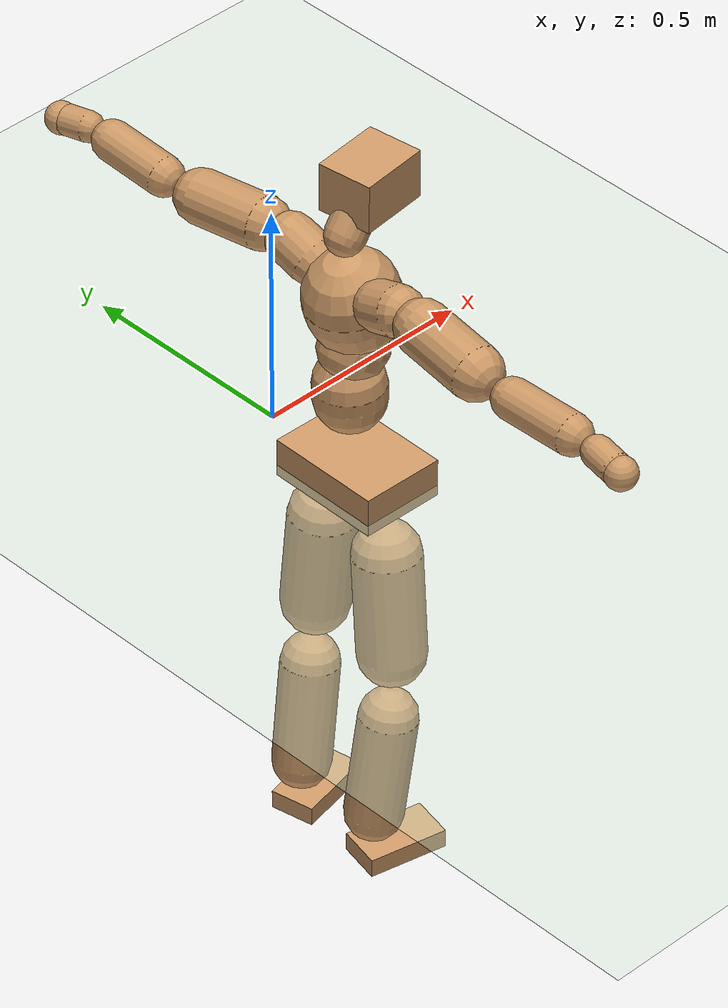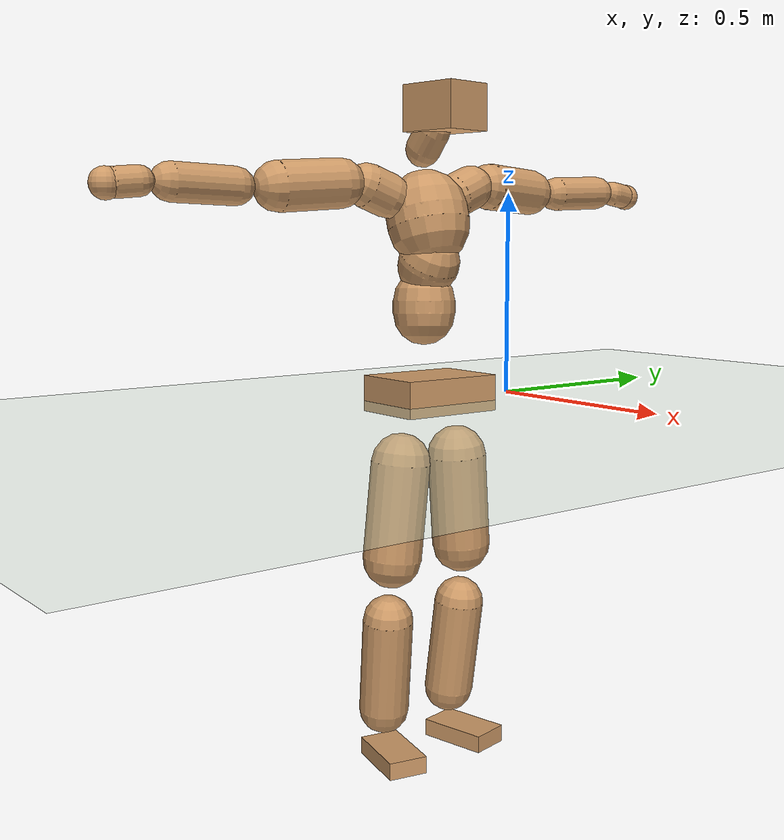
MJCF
<mujoco model="humanoid">
  <compiler coordinate="local" angle="radian"/>
  <default>
    <joint damping="0.0" armature="0.01" stiffness="0.0" limited="true"/>
    <geom conaffinity="1" condim="3" contype="7" margin="0.001" rgba="0.8 0.6 .4 1"/>
  </default>
  <asset>
    <texture type="skybox" builtin="gradient" rgb1=".4 .5 .6" rgb2="0 0 0" width="100" height="100"/>
    <texture builtin="flat" height="1278" mark="cross" markrgb="1 1 1" name="texgeom" random="0.01" rgb1="0.8 0.6 0.4" rgb2="0.8 0.6 0.4" type="cube" width="127"/>
    <texture builtin="checker" height="100" name="texplane" rgb1="0 0 0" rgb2="0.8 0.8 0.8" type="2d" width="100"/>
    <material name="MatPlane" reflectance="0.5" shininess="1" specular="1" texrepeat="60 60" texture="texplane"/>
    <material name="geom" texture="texgeom" texuniform="true"/>
  </asset>
  <worldbody>
    <light cutoff="100" diffuse="1 1 1" dir="-0 0 -1.3" directional="true" exponent="1" pos="0 0 1.3" specular=".1 .1 .1"/>
    <geom conaffinity="1" condim="3" name="floor" pos="0 0 0" rgba="0.8 0.9 0.8 1" size="100 100 .2" type="plane" material="MatPlane"/>
    <body name="Pelvis" pos="0.0012 -0.2463 0.0305">
      <freejoint name="Pelvis"/>
      <geom type="box" contype="1" conaffinity="1" density="500" pos="-0.0075 0.0001 -0.0138" size="0.0934 0.1306 0.0438" quat="1.0000 0.0000 0.0000 -0.0074" name="Pelvis"/>
      <body name="L_Hip" pos="-0.011 0.0839 -0.1006">
        <joint name="L_Hip_x" type="hinge" pos="0 0 0" axis="1 0 0" stiffness="800" damping="80" armature="0.02" range="-180.0000 180.0000"/>
        <joint name="L_Hip_y" type="hinge" pos="0 0 0" axis="0 1 0" stiffness="800" damping="80" armature="0.02" range="-180.0000 180.0000"/>
        <joint name="L_Hip_z" type="hinge" pos="0 0 0" axis="0 0 1" stiffness="800" damping="80" armature="0.02" range="-180.0000 180.0000"/>
        <geom type="capsule" contype="1" conaffinity="1" density="500" fromto="-0.0012 0.0063 -0.0773 -0.0050 0.0251 -0.3094" size="0.0734" name="L_Hip"/>
        <body name="L_Knee" pos="-0.0062 0.0314 -0.3867">
          <joint name="L_Knee_x" type="hinge" pos="0 0 0" axis="1 0 0" stiffness="800" damping="80" armature="0.02" range="-180.0000 180.0000"/>
          <joint name="L_Knee_y" type="hinge" pos="0 0 0" axis="0 1 0" stiffness="800" damping="80" armature="0.02" range="-180.0000 180.0000"/>
          <joint name="L_Knee_z" type="hinge" pos="0 0 0" axis="0 0 1" stiffness="800" damping="80" armature="0.02" range="-180.0000 180.0000"/>
          <geom type="capsule" contype="1" conaffinity="1" density="500" fromto="-0.0106 -0.0024 -0.0804 -0.0422 -0.0097 -0.3214" size="0.0624" name="L_Knee"/>
          <body name="L_Ankle" pos="-0.0528 -0.0122 -0.4018">
            <joint name="L_Ankle_x" type="hinge" pos="0 0 0" axis="1 0 0" stiffness="800" damping="80" armature="0.02" range="-180.0000 180.0000"/>
            <joint name="L_Ankle_y" type="hinge" pos="0 0 0" axis="0 1 0" stiffness="800" damping="80" armature="0.02" range="-180.0000 180.0000"/>
            <joint name="L_Ankle_z" type="hinge" pos="0 0 0" axis="0 0 1" stiffness="800" damping="80" armature="0.02" range="-180.0000 180.0000"/>
            <geom type="box" contype="1" conaffinity="1" density="500" pos="0.0612 0.0125 -0.0282" size="0.0882 0.0495 0.0215" quat="0.9949 0.0000 0.0000 0.1004" name="L_Ankle"/>
            <body name="L_Toe" pos="0.1224 0.0249 -0.0565">
              <joint name="L_Toe_x" type="hinge" pos="0 0 0" axis="1 0 0" stiffness="500" damping="50" armature="0.02" range="-180.0000 180.0000"/>
              <joint name="L_Toe_y" type="hinge" pos="0 0 0" axis="0 1 0" stiffness="500" damping="50" armature="0.02" range="-180.0000 180.0000"/>
              <joint name="L_Toe_z" type="hinge" pos="0 0 0" axis="0 0 1" stiffness="500" damping="50" armature="0.02" range="-180.0000 180.0000"/>
              <geom type="box" contype="1" conaffinity="1" density="500" pos="0.0000 0.0000 0.0304" size="0.0009 0.0025 0.0012" quat="0.9943 0.0000 0.0000 0.1065" name="L_Toe"/>
            </body>
          </body>
        </body>
      </body>
      <body name="R_Hip" pos="-0.0083 -0.0799 -0.0991">
        <joint name="R_Hip_x" type="hinge" pos="0 0 0" axis="1 0 0" stiffness="800" damping="80" armature="0.02" range="-180.0000 180.0000"/>
        <joint name="R_Hip_y" type="hinge" pos="0 0 0" axis="0 1 0" stiffness="800" damping="80" armature="0.02" range="-180.0000 180.0000"/>
        <joint name="R_Hip_z" type="hinge" pos="0 0 0" axis="0 0 1" stiffness="800" damping="80" armature="0.02" range="-180.0000 180.0000"/>
        <geom type="capsule" contype="1" conaffinity="1" density="500" fromto="-0.0021 -0.0075 -0.0790 -0.0083 -0.0300 -0.3161" size="0.0725" name="R_Hip"/>
        <body name="R_Knee" pos="-0.0103 -0.0374 -0.3951">
          <joint name="R_Knee_x" type="hinge" pos="0 0 0" axis="1 0 0" stiffness="800" damping="80" armature="0.02" range="-180.0000 180.0000"/>
          <joint name="R_Knee_y" type="hinge" pos="0 0 0" axis="0 1 0" stiffness="800" damping="80" armature="0.02" range="-180.0000 180.0000"/>
          <joint name="R_Knee_z" type="hinge" pos="0 0 0" axis="0 0 1" stiffness="800" damping="80" armature="0.02" range="-180.0000 180.0000"/>
          <geom type="capsule" contype="1" conaffinity="1" density="500" fromto="-0.0103 0.0029 -0.0803 -0.0413 0.0117 -0.3213" size="0.0624" name="R_Knee"/>
          <body name="R_Ankle" pos="-0.0516 0.0146 -0.4016">
            <joint name="R_Ankle_x" type="hinge" pos="0 0 0" axis="1 0 0" stiffness="800" damping="80" armature="0.02" range="-180.0000 180.0000"/>
            <joint name="R_Ankle_y" type="hinge" pos="0 0 0" axis="0 1 0" stiffness="800" damping="80" armature="0.02" range="-180.0000 180.0000"/>
            <joint name="R_Ankle_z" type="hinge" pos="0 0 0" axis="0 0 1" stiffness="800" damping="80" armature="0.02" range="-180.0000 180.0000"/>
            <geom type="box" contype="1" conaffinity="1" density="500" pos="0.0631 -0.0135 -0.0248" size="0.0883 0.0491 0.0215" quat="0.9944 0.0000 0.0000 -0.1055" name="R_Ankle"/>
            <body name="R_Toe" pos="0.1262 -0.0271 -0.0497">
              <joint name="R_Toe_x" type="hinge" pos="0 0 0" axis="1 0 0" stiffness="500" damping="50" armature="0.02" range="-180.0000 180.0000"/>
              <joint name="R_Toe_y" type="hinge" pos="0 0 0" axis="0 1 0" stiffness="500" damping="50" armature="0.02" range="-180.0000 180.0000"/>
              <joint name="R_Toe_z" type="hinge" pos="0 0 0" axis="0 0 1" stiffness="500" damping="50" armature="0.02" range="-180.0000 180.0000"/>
              <geom type="box" contype="1" conaffinity="1" density="500" pos="0.0000 0.0000 0.0273" size="0.0009 0.0024 0.0012" quat="0.9953 0.0000 0.0000 -0.0965" name="R_Toe"/>
            </body>
          </body>
        </body>
      </body>
      <body name="Torso" pos="-0.0258 -0.0033 0.1167">
        <joint name="Torso_x" type="hinge" pos="0 0 0" axis="1 0 0" stiffness="1000" damping="100" armature="0.02" range="-180.0000 180.0000"/>
        <joint name="Torso_y" type="hinge" pos="0 0 0" axis="0 1 0" stiffness="1000" damping="100" armature="0.02" range="-180.0000 180.0000"/>
        <joint name="Torso_z" type="hinge" pos="0 0 0" axis="0 0 1" stiffness="1000" damping="100" armature="0.02" range="-180.0000 180.0000"/>
        <geom type="capsule" contype="1" conaffinity="1" density="500" fromto="-0.0035 0.0025 0.0923 -0.0024 0.0017 0.0615" size="0.076" name="Torso"/>
        <body name="Spine" pos="-0.0059 0.0042 0.1539">
          <joint name="Spine_x" type="hinge" pos="0 0 0" axis="1 0 0" stiffness="1000" damping="100" armature="0.02" range="-180.0000 180.0000"/>
          <joint name="Spine_y" type="hinge" pos="0 0 0" axis="0 1 0" stiffness="1000" damping="100" armature="0.02" range="-180.0000 180.0000"/>
          <joint name="Spine_z" type="hinge" pos="0 0 0" axis="0 0 1" stiffness="1000" damping="100" armature="0.02" range="-180.0000 180.0000"/>
          <geom type="capsule" contype="1" conaffinity="1" density="500" fromto="0.0213 0.0005 0.0331 0.0142 0.0003 0.0221" size="0.0737" name="Spine"/>
          <body name="Chest" pos="0.0354 0.0008 0.0552">
            <joint name="Chest_x" type="hinge" pos="0 0 0" axis="1 0 0" stiffness="1000" damping="100" armature="0.02" range="-180.0000 180.0000"/>
            <joint name="Chest_y" type="hinge" pos="0 0 0" axis="0 1 0" stiffness="1000" damping="100" armature="0.02" range="-180.0000 180.0000"/>
            <joint name="Chest_z" type="hinge" pos="0 0 0" axis="0 0 1" stiffness="1000" damping="100" armature="0.02" range="-180.0000 180.0000"/>
            <geom type="capsule" contype="1" conaffinity="1" density="500" fromto="-0.0267 -0.0001 0.0957 -0.0178 -0.0000 0.0638" size="0.0992" name="Chest"/>
            <body name="Neck" pos="-0.0522 0.0004 0.2285">
              <joint name="Neck_x" type="hinge" pos="0 0 0" axis="1 0 0" stiffness="500" damping="50" armature="0.02" range="-180.0000 180.0000"/>
              <joint name="Neck_y" type="hinge" pos="0 0 0" axis="0 1 0" stiffness="500" damping="50" armature="0.02" range="-180.0000 180.0000"/>
              <joint name="Neck_z" type="hinge" pos="0 0 0" axis="0 0 1" stiffness="500" damping="50" armature="0.02" range="-180.0000 180.0000"/>
              <geom type="capsule" contype="1" conaffinity="1" density="500" fromto="0.0108 0.0010 0.0137 0.0433 0.0040 0.0547" size="0.0426" name="Neck"/>
              <body name="Head" pos="0.0541 0.005 0.0683">
                <joint name="Head_x" type="hinge" pos="0 0 0" axis="1 0 0" stiffness="500" damping="50" armature="0.02" range="-180.0000 180.0000"/>
                <joint name="Head_y" type="hinge" pos="0 0 0" axis="0 1 0" stiffness="500" damping="50" armature="0.02" range="-180.0000 180.0000"/>
                <joint name="Head_z" type="hinge" pos="0 0 0" axis="0 0 1" stiffness="500" damping="50" armature="0.02" range="-180.0000 180.0000"/>
                <geom type="box" contype="1" conaffinity="1" density="500" pos="0.0280 0.0035 0.0352" size="0.0776 0.0612 0.0539" quat="0.9981 0.0000 0.0000 0.0618" name="Head"/>
              </body>
            </body>
            <body name="L_Thorax" pos="-0.0363 0.079 0.1267">
              <joint name="L_Thorax_x" type="hinge" pos="0 0 0" axis="1 0 0" stiffness="500" damping="50" armature="0.02" range="-180.0000 180.0000"/>
              <joint name="L_Thorax_y" type="hinge" pos="0 0 0" axis="0 1 0" stiffness="500" damping="50" armature="0.02" range="-180.0000 180.0000"/>
              <joint name="L_Thorax_z" type="hinge" pos="0 0 0" axis="0 0 1" stiffness="500" damping="50" armature="0.02" range="-180.0000 180.0000"/>
              <geom type="capsule" contype="1" conaffinity="1" density="500" fromto="-0.0014 0.0177 0.0072 -0.0056 0.0708 0.0288" size="0.0539" name="L_Thorax"/>
              <body name="L_Shoulder" pos="-0.007 0.0885 0.036">
                <joint name="L_Shoulder_x" type="hinge" pos="0 0 0" axis="1 0 0" stiffness="500" damping="50" armature="0.02" range="-720.0000 720.0000"/>
                <joint name="L_Shoulder_y" type="hinge" pos="0 0 0" axis="0 1 0" stiffness="500" damping="50" armature="0.02" range="-720.0000 720.0000"/>
                <joint name="L_Shoulder_z" type="hinge" pos="0 0 0" axis="0 0 1" stiffness="500" damping="50" armature="0.02" range="-720.0000 720.0000"/>
                <geom type="capsule" contype="1" conaffinity="1" density="500" fromto="-0.0063 0.0516 -0.0032 -0.0253 0.2064 -0.0129" size="0.0569" name="L_Shoulder"/>
                <body name="L_Elbow" pos="-0.0317 0.258 -0.0162">
                  <joint name="L_Elbow_x" type="hinge" pos="0 0 0" axis="1 0 0" stiffness="500" damping="50" armature="0.02" range="-720.0000 720.0000"/>
                  <joint name="L_Elbow_y" type="hinge" pos="0 0 0" axis="0 1 0" stiffness="500" damping="50" armature="0.02" range="-720.0000 720.0000"/>
                  <joint name="L_Elbow_z" type="hinge" pos="0 0 0" axis="0 0 1" stiffness="500" damping="50" armature="0.02" range="-720.0000 720.0000"/>
                  <geom type="capsule" contype="1" conaffinity="1" density="500" fromto="0.0006 0.0500 0.0019 0.0024 0.2000 0.0077" size="0.0431" name="L_Elbow"/>
                  <body name="L_Wrist" pos="0.0031 0.25 0.0096">
                    <joint name="L_Wrist_x" type="hinge" pos="0 0 0" axis="1 0 0" stiffness="300" damping="30" armature="0.02" range="-180.0000 180.0000"/>
                    <joint name="L_Wrist_y" type="hinge" pos="0 0 0" axis="0 1 0" stiffness="300" damping="30" armature="0.02" range="-180.0000 180.0000"/>
                    <joint name="L_Wrist_z" type="hinge" pos="0 0 0" axis="0 0 1" stiffness="300" damping="30" armature="0.02" range="-180.0000 180.0000"/>
                    <geom type="capsule" contype="1" conaffinity="1" density="500" fromto="-0.0028 0.0170 -0.0021 -0.0111 0.0678 -0.0083" size="0.0324" name="L_Wrist"/>
                    <body name="L_Hand" pos="-0.0139 0.0848 -0.0104">
                      <joint name="L_Hand_x" type="hinge" pos="0 0 0" axis="1 0 0" stiffness="300" damping="30" armature="0.02" range="-180.0000 180.0000"/>
                      <joint name="L_Hand_y" type="hinge" pos="0 0 0" axis="0 1 0" stiffness="300" damping="30" armature="0.02" range="-180.0000 180.0000"/>
                      <joint name="L_Hand_z" type="hinge" pos="0 0 0" axis="0 0 1" stiffness="300" damping="30" armature="0.02" range="-180.0000 180.0000"/>
                      <geom type="sphere" contype="1" conaffinity="1" density="500" size="0.0343" pos="0.0000 0.0000 0.0000" name="L_Hand"/>
                    </body>
                  </body>
                </body>
              </body>
            </body>
            <body name="R_Thorax" pos="-0.0448 -0.0797 0.1234">
              <joint name="R_Thorax_x" type="hinge" pos="0 0 0" axis="1 0 0" stiffness="500" damping="50" armature="0.02" range="-180.0000 180.0000"/>
              <joint name="R_Thorax_y" type="hinge" pos="0 0 0" axis="0 1 0" stiffness="500" damping="50" armature="0.02" range="-180.0000 180.0000"/>
              <joint name="R_Thorax_z" type="hinge" pos="0 0 0" axis="0 0 1" stiffness="500" damping="50" armature="0.02" range="-180.0000 180.0000"/>
              <geom type="capsule" contype="1" conaffinity="1" density="500" fromto="-0.0018 -0.0191 0.0074 -0.0073 -0.0764 0.0296" size="0.0528" name="R_Thorax"/>
              <body name="R_Shoulder" pos="-0.0092 -0.0956 0.0371">
                <joint name="R_Shoulder_x" type="hinge" pos="0 0 0" axis="1 0 0" stiffness="500" damping="50" armature="0.02" range="-720.0000 720.0000"/>
                <joint name="R_Shoulder_y" type="hinge" pos="0 0 0" axis="0 1 0" stiffness="500" damping="50" armature="0.02" range="-720.0000 720.0000"/>
                <joint name="R_Shoulder_z" type="hinge" pos="0 0 0" axis="0 0 1" stiffness="500" damping="50" armature="0.02" range="-720.0000 720.0000"/>
                <geom type="capsule" contype="1" conaffinity="1" density="500" fromto="-0.0051 -0.0520 -0.0034 -0.0203 -0.2081 -0.0138" size="0.0579" name="R_Shoulder"/>
                <body name="R_Elbow" pos="-0.0254 -0.2602 -0.0172">
                  <joint name="R_Elbow_x" type="hinge" pos="0 0 0" axis="1 0 0" stiffness="500" damping="50" armature="0.02" range="-720.0000 720.0000"/>
                  <joint name="R_Elbow_y" type="hinge" pos="0 0 0" axis="0 1 0" stiffness="500" damping="50" armature="0.02" range="-720.0000 720.0000"/>
                  <joint name="R_Elbow_z" type="hinge" pos="0 0 0" axis="0 0 1" stiffness="500" damping="50" armature="0.02" range="-720.0000 720.0000"/>
                  <geom type="capsule" contype="1" conaffinity="1" density="500" fromto="-0.0003 -0.0518 0.0016 -0.0011 -0.2070 0.0066" size="0.0429" name="R_Elbow"/>
                  <body name="R_Wrist" pos="-0.0014 -0.2588 0.0082">
                    <joint name="R_Wrist_x" type="hinge" pos="0 0 0" axis="1 0 0" stiffness="300" damping="30" armature="0.02" range="-180.0000 180.0000"/>
                    <joint name="R_Wrist_y" type="hinge" pos="0 0 0" axis="0 1 0" stiffness="300" damping="30" armature="0.02" range="-180.0000 180.0000"/>
                    <joint name="R_Wrist_z" type="hinge" pos="0 0 0" axis="0 0 1" stiffness="300" damping="30" armature="0.02" range="-180.0000 180.0000"/>
                    <geom type="capsule" contype="1" conaffinity="1" density="500" fromto="-0.0023 -0.0172 -0.0015 -0.0090 -0.0688 -0.0061" size="0.0331" name="R_Wrist"/>
                    <body name="R_Hand" pos="-0.0113 -0.086 -0.0077">
                      <joint name="R_Hand_x" type="hinge" pos="0 0 0" axis="1 0 0" stiffness="300" damping="30" armature="0.02" range="-180.0000 180.0000"/>
                      <joint name="R_Hand_y" type="hinge" pos="0 0 0" axis="0 1 0" stiffness="300" damping="30" armature="0.02" range="-180.0000 180.0000"/>
                      <joint name="R_Hand_z" type="hinge" pos="0 0 0" axis="0 0 1" stiffness="300" damping="30" armature="0.02" range="-180.0000 180.0000"/>
                      <geom type="sphere" contype="1" conaffinity="1" density="500" size="0.0346" pos="0.0000 0.0000 0.0000" name="R_Hand"/>
                    </body>
                  </body>
                </body>
              </body>
            </body>
          </body>
        </body>
      </body>
    </body>
  </worldbody>
  <actuator>
    <motor name="L_Hip_x" joint="L_Hip_x" gear="500"/>
    <motor name="L_Hip_y" joint="L_Hip_y" gear="500"/>
    <motor name="L_Hip_z" joint="L_Hip_z" gear="500"/>
    <motor name="L_Knee_x" joint="L_Knee_x" gear="500"/>
    <motor name="L_Knee_y" joint="L_Knee_y" gear="500"/>
    <motor name="L_Knee_z" joint="L_Knee_z" gear="500"/>
    <motor name="L_Ankle_x" joint="L_Ankle_x" gear="500"/>
    <motor name="L_Ankle_y" joint="L_Ankle_y" gear="500"/>
    <motor name="L_Ankle_z" joint="L_Ankle_z" gear="500"/>
    <motor name="L_Toe_x" joint="L_Toe_x" gear="500"/>
    <motor name="L_Toe_y" joint="L_Toe_y" gear="500"/>
    <motor name="L_Toe_z" joint="L_Toe_z" gear="500"/>
    <motor name="R_Hip_x" joint="R_Hip_x" gear="500"/>
    <motor name="R_Hip_y" joint="R_Hip_y" gear="500"/>
    <motor name="R_Hip_z" joint="R_Hip_z" gear="500"/>
    <motor name="R_Knee_x" joint="R_Knee_x" gear="500"/>
    <motor name="R_Knee_y" joint="R_Knee_y" gear="500"/>
    <motor name="R_Knee_z" joint="R_Knee_z" gear="500"/>
    <motor name="R_Ankle_x" joint="R_Ankle_x" gear="500"/>
    <motor name="R_Ankle_y" joint="R_Ankle_y" gear="500"/>
    <motor name="R_Ankle_z" joint="R_Ankle_z" gear="500"/>
    <motor name="R_Toe_x" joint="R_Toe_x" gear="500"/>
    <motor name="R_Toe_y" joint="R_Toe_y" gear="500"/>
    <motor name="R_Toe_z" joint="R_Toe_z" gear="500"/>
    <motor name="Torso_x" joint="Torso_x" gear="500"/>
    <motor name="Torso_y" joint="Torso_y" gear="500"/>
    <motor name="Torso_z" joint="Torso_z" gear="500"/>
    <motor name="Spine_x" joint="Spine_x" gear="500"/>
    <motor name="Spine_y" joint="Spine_y" gear="500"/>
    <motor name="Spine_z" joint="Spine_z" gear="500"/>
    <motor name="Chest_x" joint="Chest_x" gear="500"/>
    <motor name="Chest_y" joint="Chest_y" gear="500"/>
    <motor name="Chest_z" joint="Chest_z" gear="500"/>
    <motor name="Neck_x" joint="Neck_x" gear="500"/>
    <motor name="Neck_y" joint="Neck_y" gear="500"/>
    <motor name="Neck_z" joint="Neck_z" gear="500"/>
    <motor name="Head_x" joint="Head_x" gear="500"/>
    <motor name="Head_y" joint="Head_y" gear="500"/>
    <motor name="Head_z" joint="Head_z" gear="500"/>
    <motor name="L_Thorax_x" joint="L_Thorax_x" gear="500"/>
    <motor name="L_Thorax_y" joint="L_Thorax_y" gear="500"/>
    <motor name="L_Thorax_z" joint="L_Thorax_z" gear="500"/>
    <motor name="L_Shoulder_x" joint="L_Shoulder_x" gear="500"/>
    <motor name="L_Shoulder_y" joint="L_Shoulder_y" gear="500"/>
    <motor name="L_Shoulder_z" joint="L_Shoulder_z" gear="500"/>
    <motor name="L_Elbow_x" joint="L_Elbow_x" gear="500"/>
    <motor name="L_Elbow_y" joint="L_Elbow_y" gear="500"/>
    <motor name="L_Elbow_z" joint="L_Elbow_z" gear="500"/>
    <motor name="L_Wrist_x" joint="L_Wrist_x" gear="500"/>
    <motor name="L_Wrist_y" joint="L_Wrist_y" gear="500"/>
    <motor name="L_Wrist_z" joint="L_Wrist_z" gear="500"/>
    <motor name="L_Hand_x" joint="L_Hand_x" gear="500"/>
    <motor name="L_Hand_y" joint="L_Hand_y" gear="500"/>
    <motor name="L_Hand_z" joint="L_Hand_z" gear="500"/>
    <motor name="R_Thorax_x" joint="R_Thorax_x" gear="500"/>
    <motor name="R_Thorax_y" joint="R_Thorax_y" gear="500"/>
    <motor name="R_Thorax_z" joint="R_Thorax_z" gear="500"/>
    <motor name="R_Shoulder_x" joint="R_Shoulder_x" gear="500"/>
    <motor name="R_Shoulder_y" joint="R_Shoulder_y" gear="500"/>
    <motor name="R_Shoulder_z" joint="R_Shoulder_z" gear="500"/>
    <motor name="R_Elbow_x" joint="R_Elbow_x" gear="500"/>
    <motor name="R_Elbow_y" joint="R_Elbow_y" gear="500"/>
    <motor name="R_Elbow_z" joint="R_Elbow_z" gear="500"/>
    <motor name="R_Wrist_x" joint="R_Wrist_x" gear="500"/>
    <motor name="R_Wrist_y" joint="R_Wrist_y" gear="500"/>
    <motor name="R_Wrist_z" joint="R_Wrist_z" gear="500"/>
    <motor name="R_Hand_x" joint="R_Hand_x" gear="500"/>
    <motor name="R_Hand_y" joint="R_Hand_y" gear="500"/>
    <motor name="R_Hand_z" joint="R_Hand_z" gear="500"/>
  </actuator>
  <contact>
    <exclude body1="Torso" body2="Chest"/>
    <exclude body1="Head" body2="Chest"/>
    <exclude body1="R_Knee" body2="R_Toe"/>
    <exclude body1="R_Knee" body2="L_Ankle"/>
    <exclude body1="R_Knee" body2="L_Toe"/>
    <exclude body1="L_Knee" body2="L_Toe"/>
    <exclude body1="L_Knee" body2="R_Ankle"/>
    <exclude body1="L_Knee" body2="R_Toe"/>
    <exclude body1="L_Shoulder" body2="Chest"/>
    <exclude body1="R_Shoulder" body2="Chest"/>
  </contact>
  <sensor/>
  <size njmax="700" nconmax="700"/>
</mujoco>
